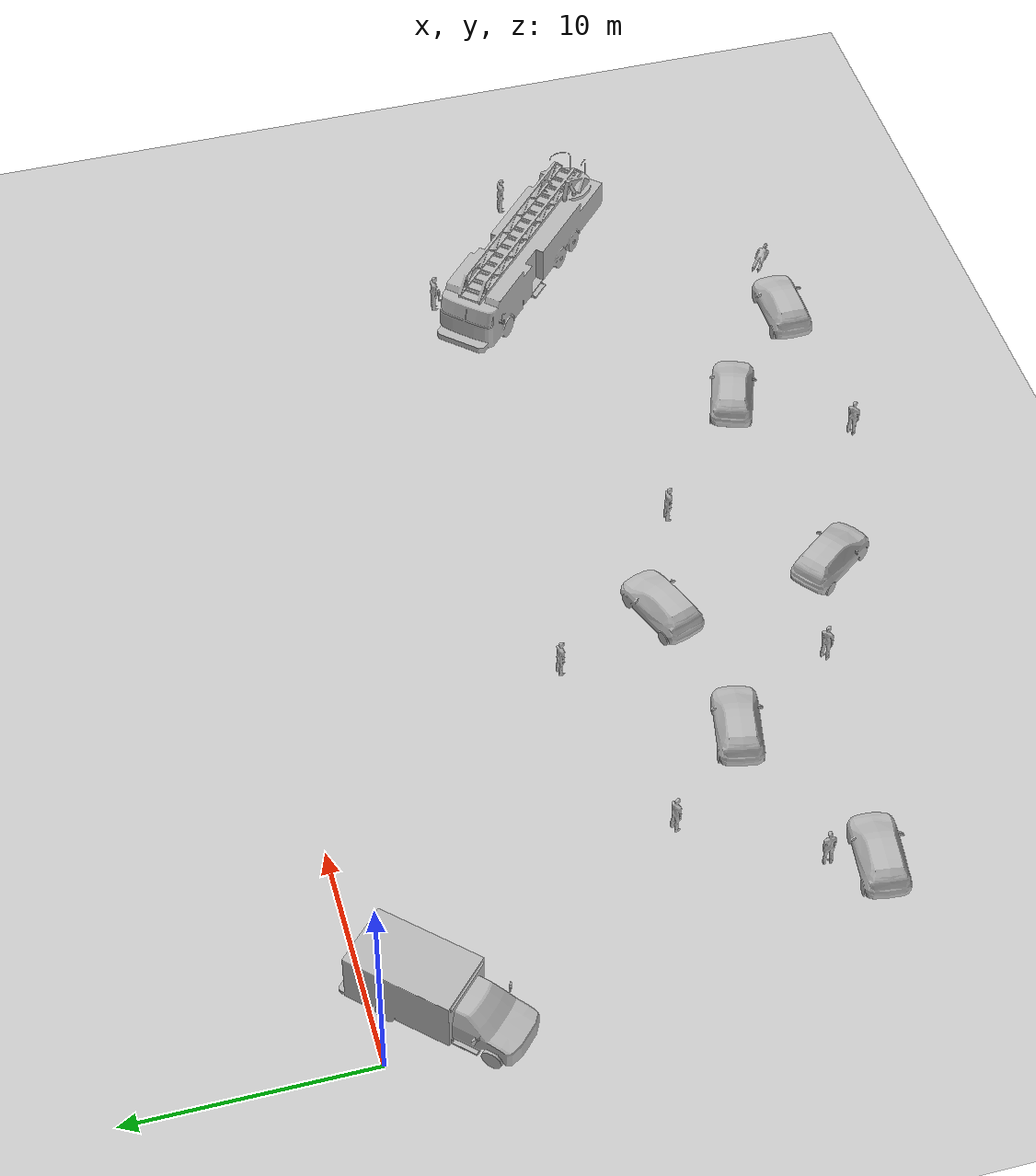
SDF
<sdf version="1.7">
 <world name="default">
  <light name="sun" type="directional">
   <pose>0 0 10 0 -0 0</pose>
   <diffuse>0.8 0.8 0.8 1</diffuse>
   <specular>0.2 0.2 0.2 1</specular>
   <attenuation>
    <range>1000</range>
    <constant>0.9</constant>
    <linear>0.01</linear>
    <quadratic>0.001</quadratic>
   </attenuation>
   <direction>-0.5 0.1 -0.9</direction>
   <spot><inner_angle>0</inner_angle><outer_angle>0</outer_angle><falloff>0</falloff></spot>
  </light>
  <model name="ground_plane">
   <static>1</static>
   <link name="link">
    <collision name="collision">
     <geometry><plane><normal>0 0 1</normal><size>100 100</size></plane></geometry>
     <surface>
      <contact><collide_bitmask>65535</collide_bitmask></contact>
      <friction><ode><mu>100</mu><mu2>50</mu2></ode></friction>
     </surface>
    </collision>
    <visual name="visual">
     <cast_shadows>0</cast_shadows>
     <geometry><plane><normal>0 0 1</normal><size>100 100</size></plane></geometry>
     <material>
      <script><uri>file://media/materials/scripts/gazebo.material</uri><name>Gazebo/Grey</name></script>
     </material>
    </visual>
   </link>
  </model>
  <gravity>0 0 -9.8</gravity>
  <magnetic_field>6e-06 2.3e-05 -4.2e-05</magnetic_field>
  <atmosphere type="adiabatic"/>
  <physics type="ode">
   <max_step_size>0.001</max_step_size>
   <real_time_factor>1</real_time_factor>
   <real_time_update_rate>1000</real_time_update_rate>
  </physics>
  <scene><ambient>0.4 0.4 0.4 1</ambient><background>0.7 0.7 0.7 1</background><shadows>1</shadows></scene>
  <spherical_coordinates>
   <surface_model>EARTH_WGS84</surface_model>
   <latitude_deg>0</latitude_deg>
   <longitude_deg>0</longitude_deg>
   <elevation>0</elevation>
   <heading_deg>0</heading_deg>
  </spherical_coordinates>
  <model name="ambulance">
   <static>1</static>
   <link name="link">
    <collision name="collision">
     <geometry>
      <mesh><scale>0.0254 0.0254 0.0254</scale><uri>model://ambulance/meshes/ambulance.obj</uri></mesh>
     </geometry>
    </collision>
    <visual name="visual">
     <geometry>
      <mesh><scale>0.0254 0.0254 0.0254</scale><uri>model://ambulance/meshes/ambulance.obj</uri></mesh>
     </geometry>
    </visual>
   </link>
   <pose>1.71447 -2.54118 0 0 0 -0.770254</pose>
  </model>
  <model name="person_standing">
   <link name="link">
    <inertial>
     <pose>0 -0.1 0.95 0 -0 0</pose>
     <mass>80</mass>
     <inertia><ixx>24.88</ixx><ixy>0</ixy><ixz>0</ixz><iyy>25.73</iyy><iyz>0</iyz><izz>2.48</izz></inertia>
    </inertial>
    <collision name="bottom">
     <pose>0 -0.1 0.01 0 -0 0</pose>
     <geometry><box><size>0.5 0.35 0.02</size></box></geometry>
    </collision>
    <collision name="person">
     <pose>0 0 0.02 0.04 -0 0</pose>
     <geometry><mesh><uri>model://person_standing/meshes/standing.dae</uri></mesh></geometry>
    </collision>
    <visual name="visual">
     <pose>0 0 0.02 0.04 -0 0</pose>
     <geometry><mesh><uri>model://person_standing/meshes/standing.dae</uri></mesh></geometry>
    </visual>
   </link>
   <pose>16.4261 -11.359 0 -1e-06 -1e-06 0.175263</pose>
  </model>
  <model name="hatchback_blue">
   <static>1</static>
   <link name="link">
    <collision name="collision">
     <pose>0 0 0 0 -0 1.5708</pose>
     <geometry>
      <mesh><scale>0.0254 0.0254 0.0254</scale><uri>model://hatchback_blue/meshes/hatchback.obj</uri></mesh>
     </geometry>
    </collision>
    <visual name="visual">
     <pose>0 0 0 0 -0 1.5708</pose>
     <geometry>
      <mesh><scale>0.0254 0.0254 0.0254</scale><uri>model://hatchback_blue/meshes/hatchback.obj</uri></mesh>
     </geometry>
    </visual>
   </link>
   <pose>29.4781 -23.1887 -0.061059 0 0 -0.349249</pose>
  </model>
  <model name="hatchback_blue_0">
   <static>1</static>
   <link name="link">
    <collision name="collision">
     <pose>0 0 0 0 -0 1.5708</pose>
     <geometry>
      <mesh><scale>0.0254 0.0254 0.0254</scale><uri>model://hatchback_blue/meshes/hatchback.obj</uri></mesh>
     </geometry>
    </collision>
    <visual name="visual">
     <pose>0 0 0 0 -0 1.5708</pose>
     <geometry>
      <mesh><scale>0.0254 0.0254 0.0254</scale><uri>model://hatchback_blue/meshes/hatchback.obj</uri></mesh>
     </geometry>
    </visual>
   </link>
   <pose>3.5952 -20.7962 0 0 0 -0.128438</pose>
  </model>
  <model name="hatchback_red">
   <static>1</static>
   <link name="link">
    <collision name="collision">
     <pose>0 0 0 0 -0 1.5708</pose>
     <geometry>
      <mesh><scale>0.0254 0.0254 0.0254</scale><uri>model://hatchback_red/meshes/hatchback.obj</uri></mesh>
     </geometry>
    </collision>
    <visual name="visual">
     <pose>0 0 0 0 -0 1.5708</pose>
     <geometry>
      <mesh><scale>0.0254 0.0254 0.0254</scale><uri>model://hatchback_red/meshes/hatchback.obj</uri></mesh>
     </geometry>
    </visual>
   </link>
   <pose>18.1148 -16.5602 0 0 -0 0.347976</pose>
  </model>
  <model name="hatchback_red_0">
   <static>1</static>
   <link name="link">
    <collision name="collision">
     <pose>0 0 0 0 -0 1.5708</pose>
     <geometry>
      <mesh><scale>0.0254 0.0254 0.0254</scale><uri>model://hatchback_red/meshes/hatchback.obj</uri></mesh>
     </geometry>
    </collision>
    <visual name="visual">
     <pose>0 0 0 0 -0 1.5708</pose>
     <geometry>
      <mesh><scale>0.0254 0.0254 0.0254</scale><uri>model://hatchback_red/meshes/hatchback.obj</uri></mesh>
     </geometry>
    </visual>
   </link>
   <pose>18.9825 -23.9605 0 0 0 -0.913477</pose>
  </model>
  <model name="person_standing_0">
   <link name="link">
    <inertial>
     <pose>0 -0.1 0.95 0 -0 0</pose>
     <mass>80</mass>
     <inertia><ixx>24.88</ixx><ixy>0</ixy><ixz>0</ixz><iyy>25.73</iyy><iyz>0</iyz><izz>2.48</izz></inertia>
    </inertial>
    <collision name="bottom">
     <pose>0 -0.1 0.01 0 -0 0</pose>
     <geometry><box><size>0.5 0.35 0.02</size></box></geometry>
    </collision>
    <collision name="person">
     <pose>0 0 0.02 0.04 -0 0</pose>
     <geometry><mesh><uri>model://person_standing/meshes/standing.dae</uri></mesh></geometry>
    </collision>
    <visual name="visual">
     <pose>0 0 0.02 0.04 -0 0</pose>
     <geometry><mesh><uri>model://person_standing/meshes/standing.dae</uri></mesh></geometry>
    </visual>
   </link>
   <pose>7.52492 -13.5697 -1e-06 -1e-06 1e-06 0.331932</pose>
  </model>
  <model name="person_standing_1">
   <link name="link">
    <inertial>
     <pose>0 -0.1 0.95 0 -0 0</pose>
     <mass>80</mass>
     <inertia><ixx>24.88</ixx><ixy>0</ixy><ixz>0</ixz><iyy>25.73</iyy><iyz>0</iyz><izz>2.48</izz></inertia>
    </inertial>
    <collision name="bottom">
     <pose>0 -0.1 0.01 0 -0 0</pose>
     <geometry><box><size>0.5 0.35 0.02</size></box></geometry>
    </collision>
    <collision name="person">
     <pose>0 0 0.02 0.04 -0 0</pose>
     <geometry><mesh><uri>model://person_standing/meshes/standing.dae</uri></mesh></geometry>
    </collision>
    <visual name="visual">
     <pose>0 0 0.02 0.04 -0 0</pose>
     <geometry><mesh><uri>model://person_standing/meshes/standing.dae</uri></mesh></geometry>
    </visual>
   </link>
   <pose>4.3718 -18.9104 -0 1e-06 -1e-06 1.53625</pose>
  </model>
  <model name="fire_truck">
   <static>1</static>
   <link name="link">
    <collision name="collision">
     <geometry>
      <mesh><scale>0.1 0.1 0.1</scale><uri>model://fire_truck/meshes/fire_truck.obj</uri></mesh>
     </geometry>
    </collision>
    <visual name="visual">
     <geometry>
      <mesh><scale>0.1 0.1 0.1</scale><uri>model://fire_truck/meshes/fire_truck.obj</uri></mesh>
     </geometry>
    </visual>
   </link>
   <pose>40.3301 -16.1556 0 0 -0 0.823624</pose>
  </model>
  <model name="person_standing_2">
   <link name="link">
    <inertial>
     <pose>0 -0.1 0.95 0 -0 0</pose>
     <mass>80</mass>
     <inertia><ixx>24.88</ixx><ixy>0</ixy><ixz>0</ixz><iyy>25.73</iyy><iyz>0</iyz><izz>2.48</izz></inertia>
    </inertial>
    <collision name="bottom">
     <pose>0 -0.1 0.01 0 -0 0</pose>
     <geometry><box><size>0.5 0.35 0.02</size></box></geometry>
    </collision>
    <collision name="person">
     <pose>0 0 0.02 0.04 -0 0</pose>
     <geometry><mesh><uri>model://person_standing/meshes/standing.dae</uri></mesh></geometry>
    </collision>
    <visual name="visual">
     <pose>0 0 0.02 0.04 -0 0</pose>
     <geometry><mesh><uri>model://person_standing/meshes/standing.dae</uri></mesh></geometry>
    </visual>
   </link>
   <pose>23.6001 -18.2381 -0 0 -1e-06 0.00032</pose>
  </model>
  <model name="person_standing_3">
   <link name="link">
    <inertial>
     <pose>0 -0.1 0.95 0 -0 0</pose>
     <mass>80</mass>
     <inertia><ixx>24.88</ixx><ixy>0</ixy><ixz>0</ixz><iyy>25.73</iyy><iyz>0</iyz><izz>2.48</izz></inertia>
    </inertial>
    <collision name="bottom">
     <pose>0 -0.1 0.01 0 -0 0</pose>
     <geometry><box><size>0.5 0.35 0.02</size></box></geometry>
    </collision>
    <collision name="person">
     <pose>0 0 0.02 0.04 -0 0</pose>
     <geometry><mesh><uri>model://person_standing/meshes/standing.dae</uri></mesh></geometry>
    </collision>
    <visual name="visual">
     <pose>0 0 0.02 0.04 -0 0</pose>
     <geometry><mesh><uri>model://person_standing/meshes/standing.dae</uri></mesh></geometry>
    </visual>
   </link>
   <pose>39.2692 -11.6955 -0 2e-06 -1e-06 0.000649</pose>
  </model>
  <model name="person_standing_4">
   <link name="link">
    <inertial>
     <pose>0 -0.1 0.95 0 -0 0</pose>
     <mass>80</mass>
     <inertia><ixx>24.88</ixx><ixy>0</ixy><ixz>0</ixz><iyy>25.73</iyy><iyz>0</iyz><izz>2.48</izz></inertia>
    </inertial>
    <collision name="bottom">
     <pose>0 -0.1 0.01 0 -0 0</pose>
     <geometry><box><size>0.5 0.35 0.02</size></box></geometry>
    </collision>
    <collision name="person">
     <pose>0 0 0.02 0.04 -0 0</pose>
     <geometry><mesh><uri>model://person_standing/meshes/standing.dae</uri></mesh></geometry>
    </collision>
    <visual name="visual">
     <pose>0 0 0.02 0.04 -0 0</pose>
     <geometry><mesh><uri>model://person_standing/meshes/standing.dae</uri></mesh></geometry>
    </visual>
   </link>
   <pose>45.1332 -16.4802 -0 1e-06 1e-06 -0.00037</pose>
  </model>
  <model name="person_standing_5">
   <link name="link">
    <inertial>
     <pose>0 -0.1 0.95 0 -0 0</pose>
     <mass>80</mass>
     <inertia><ixx>24.88</ixx><ixy>0</ixy><ixz>0</ixz><iyy>25.73</iyy><iyz>0</iyz><izz>2.48</izz></inertia>
    </inertial>
    <collision name="bottom">
     <pose>0 -0.1 0.01 0 -0 0</pose>
     <geometry><box><size>0.5 0.35 0.02</size></box></geometry>
    </collision>
    <collision name="person">
     <pose>0 0 0.02 0.04 -0 0</pose>
     <geometry><mesh><uri>model://person_standing/meshes/standing.dae</uri></mesh></geometry>
    </collision>
    <visual name="visual">
     <pose>0 0 0.02 0.04 -0 0</pose>
     <geometry><mesh><uri>model://person_standing/meshes/standing.dae</uri></mesh></geometry>
    </visual>
   </link>
   <pose>37.6675 -27.0504 0.079294 -1.57967 0.016518 -2.16586</pose>
  </model>
  <model name="hatchback">
   <static>1</static>
   <link name="link">
    <collision name="collision">
     <pose>0 0 0 0 -0 1.5708</pose>
     <geometry>
      <mesh><scale>0.0254 0.0254 0.0254</scale><uri>model://hatchback/meshes/hatchback.obj</uri></mesh>
     </geometry>
    </collision>
    <visual name="visual">
     <pose>0 0 0 0 -0 1.5708</pose>
     <geometry>
      <mesh><scale>0.0254 0.0254 0.0254</scale><uri>model://hatchback/meshes/hatchback.obj</uri></mesh>
     </geometry>
    </visual>
   </link>
   <pose>11.1767 -17.4622 0 0 0 -0.208563</pose>
  </model>
  <model name="hatchback_0">
   <static>1</static>
   <link name="link">
    <collision name="collision">
     <pose>0 0 0 0 -0 1.5708</pose>
     <geometry>
      <mesh><scale>0.0254 0.0254 0.0254</scale><uri>model://hatchback/meshes/hatchback.obj</uri></mesh>
     </geometry>
    </collision>
    <visual name="visual">
     <pose>0 0 0 0 -0 1.5708</pose>
     <geometry>
      <mesh><scale>0.0254 0.0254 0.0254</scale><uri>model://hatchback/meshes/hatchback.obj</uri></mesh>
     </geometry>
    </visual>
   </link>
   <pose>34.2765 -27.313 0 0 -0 0</pose>
  </model>
  <model name="person_standing_6">
   <link name="link">
    <inertial>
     <pose>0 -0.1 0.95 0 -0 0</pose>
     <mass>80</mass>
     <inertia><ixx>24.88</ixx><ixy>0</ixy><ixz>0</ixz><iyy>25.73</iyy><iyz>0</iyz><izz>2.48</izz></inertia>
    </inertial>
    <collision name="bottom">
     <pose>0 -0.1 0.01 0 -0 0</pose>
     <geometry><box><size>0.5 0.35 0.02</size></box></geometry>
    </collision>
    <collision name="person">
     <pose>0 0 0.02 0.04 -0 0</pose>
     <geometry><mesh><uri>model://person_standing/meshes/standing.dae</uri></mesh></geometry>
    </collision>
    <visual name="visual">
     <pose>0 0 0.02 0.04 -0 0</pose>
     <geometry><mesh><uri>model://person_standing/meshes/standing.dae</uri></mesh></geometry>
    </visual>
   </link>
   <pose>14.3311 -22.2728 0 0 -1e-06 0.60234</pose>
  </model>
  <model name="person_standing_6_clone">
   <link name="link">
    <inertial>
     <pose>0 -0.1 0.95 0 -0 0</pose>
     <mass>80</mass>
     <inertia><ixx>24.88</ixx><ixy>0</ixy><ixz>0</ixz><iyy>25.73</iyy><iyz>0</iyz><izz>2.48</izz></inertia>
    </inertial>
    <collision name="bottom">
     <pose>0 -0.1 0.01 0 -0 0</pose>
     <geometry><box><size>0.5 0.35 0.02</size></box></geometry>
    </collision>
    <collision name="person">
     <pose>0 0 0.02 0.04 -0 0</pose>
     <geometry><mesh><uri>model://person_standing/meshes/standing.dae</uri></mesh></geometry>
    </collision>
    <visual name="visual">
     <pose>0 0 0.02 0.04 -0 0</pose>
     <geometry><mesh><uri>model://person_standing/meshes/standing.dae</uri></mesh></geometry>
    </visual>
   </link>
   <pose>26.4265 -27.7888 -1e-06 -1e-06 -1e-06 0.602376</pose>
  </model>
 </world>
</sdf>
